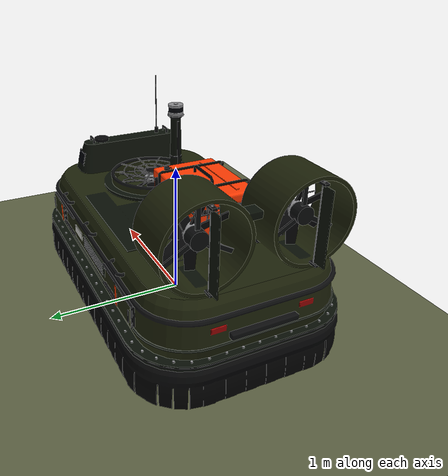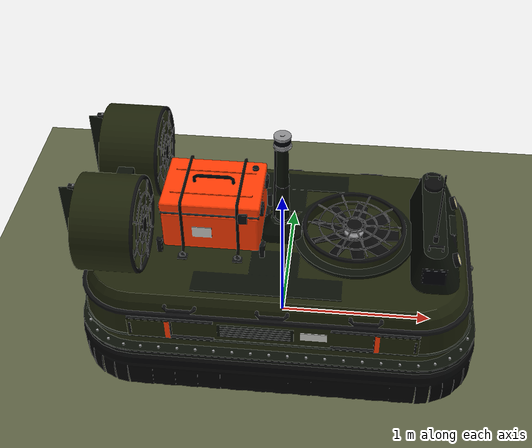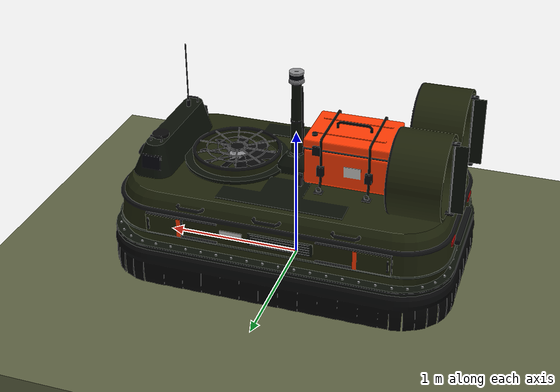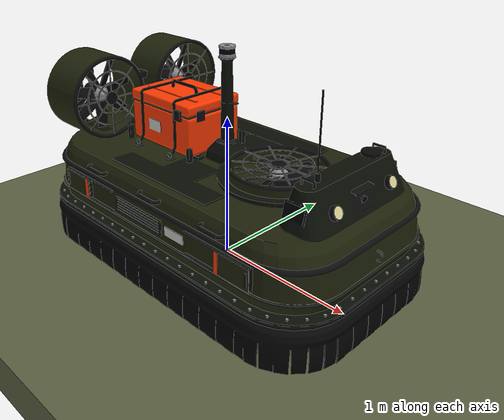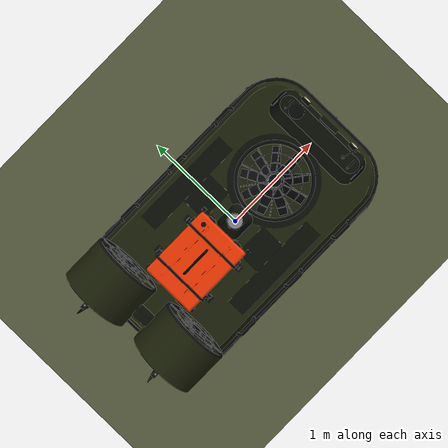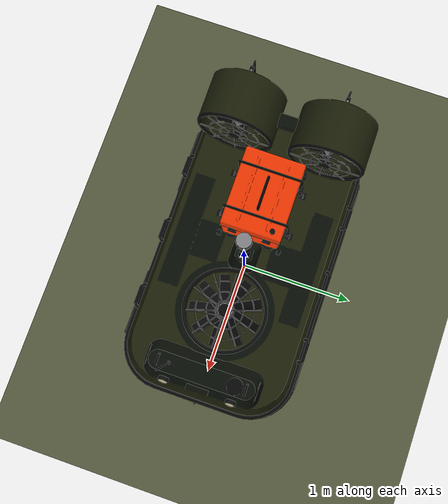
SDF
<?xml version="1.0"?>
<!-- GENERATED by hover_gazebo/scripts/gen_test_worlds_v2.py -->
<sdf version="1.9">
  <world name="v2_load_share_test">
    <physics name="1ms" type="dart">
      <max_step_size>0.001</max_step_size>
      <real_time_factor>1.0</real_time_factor>
      <dart><collision_detector>bullet</collision_detector></dart>
    </physics>
    <gravity>0 0 -9.81</gravity>
    <spherical_coordinates>
      <surface_model>EARTH_WGS84</surface_model>
      <latitude_deg>1.4466</latitude_deg><longitude_deg>103.7300</longitude_deg>
      <elevation>0</elevation><heading_deg>0</heading_deg>
    </spherical_coordinates>

    <plugin filename="gz-sim-physics-system" name="gz::sim::systems::Physics"/>
    <plugin filename="gz-sim-user-commands-system" name="gz::sim::systems::UserCommands"/>
    <plugin filename="gz-sim-scene-broadcaster-system" name="gz::sim::systems::SceneBroadcaster"/>
    <plugin filename="gz-sim-imu-system" name="gz::sim::systems::Imu"/>
    <plugin filename="gz-sim-navsat-system" name="gz::sim::systems::NavSat"/>
    <plugin filename="gz-sim-sensors-system" name="gz::sim::systems::Sensors">
      <render_engine>ogre2</render_engine>
    </plugin>
    <plugin filename="tidal_vehicle_plugins" name="hover::TerrainZones">
      <ground_height>0.0</ground_height>
    </plugin>
    <plugin filename="tidal_vehicle_plugins" name="hover::ScriptedCommands">
      <command><time>0.5</time><topic>/model/hovercraft_v2/lift_share</topic><type>gz.msgs.Double</type><data>data: 0.6</data></command>
      <command><time>0.6</time><topic>/model/hovercraft_v2/hover_enabled</topic><type>gz.msgs.Boolean</type><data>data: true</data></command>
      <command><time>6.0</time><topic>/model/hovercraft_v2/cmd_vel</topic><type>gz.msgs.Twist</type><data>linear { x: 1.0 } angular { z: 0.0 }</data></command>
      <command><time>6.2</time><topic>/model/hovercraft_v2/cmd_vel</topic><type>gz.msgs.Twist</type><data>linear { x: 1.0 } angular { z: 0.0 }</data></command>
      <command><time>6.4</time><topic>/model/hovercraft_v2/cmd_vel</topic><type>gz.msgs.Twist</type><data>linear { x: 1.0 } angular { z: 0.0 }</data></command>
      <command><time>6.6</time><topic>/model/hovercraft_v2/cmd_vel</topic><type>gz.msgs.Twist</type><data>linear { x: 1.0 } angular { z: 0.0 }</data></command>
      <command><time>6.8</time><topic>/model/hovercraft_v2/cmd_vel</topic><type>gz.msgs.Twist</type><data>linear { x: 1.0 } angular { z: 0.0 }</data></command>
      <command><time>7.0</time><topic>/model/hovercraft_v2/cmd_vel</topic><type>gz.msgs.Twist</type><data>linear { x: 1.0 } angular { z: 0.0 }</data></command>
      <command><time>7.2</time><topic>/model/hovercraft_v2/cmd_vel</topic><type>gz.msgs.Twist</type><data>linear { x: 1.0 } angular { z: 0.0 }</data></command>
      <command><time>7.4</time><topic>/model/hovercraft_v2/cmd_vel</topic><type>gz.msgs.Twist</type><data>linear { x: 1.0 } angular { z: 0.0 }</data></command>
      <command><time>7.6</time><topic>/model/hovercraft_v2/cmd_vel</topic><type>gz.msgs.Twist</type><data>linear { x: 1.0 } angular { z: 0.0 }</data></command>
      <command><time>7.8</time><topic>/model/hovercraft_v2/cmd_vel</topic><type>gz.msgs.Twist</type><data>linear { x: 1.0 } angular { z: 0.0 }</data></command>
      <command><time>8.0</time><topic>/model/hovercraft_v2/cmd_vel</topic><type>gz.msgs.Twist</type><data>linear { x: 1.0 } angular { z: 0.0 }</data></command>
      <command><time>8.2</time><topic>/model/hovercraft_v2/cmd_vel</topic><type>gz.msgs.Twist</type><data>linear { x: 1.0 } angular { z: 0.0 }</data></command>
      <command><time>8.4</time><topic>/model/hovercraft_v2/cmd_vel</topic><type>gz.msgs.Twist</type><data>linear { x: 1.0 } angular { z: 0.0 }</data></command>
      <command><time>8.6</time><topic>/model/hovercraft_v2/cmd_vel</topic><type>gz.msgs.Twist</type><data>linear { x: 1.0 } angular { z: 0.0 }</data></command>
      <command><time>8.8</time><topic>/model/hovercraft_v2/cmd_vel</topic><type>gz.msgs.Twist</type><data>linear { x: 1.0 } angular { z: 0.0 }</data></command>
      <command><time>9.0</time><topic>/model/hovercraft_v2/cmd_vel</topic><type>gz.msgs.Twist</type><data>linear { x: 1.0 } angular { z: 0.0 }</data></command>
      <command><time>9.2</time><topic>/model/hovercraft_v2/cmd_vel</topic><type>gz.msgs.Twist</type><data>linear { x: 1.0 } angular { z: 0.0 }</data></command>
      <command><time>9.4</time><topic>/model/hovercraft_v2/cmd_vel</topic><type>gz.msgs.Twist</type><data>linear { x: 1.0 } angular { z: 0.0 }</data></command>
      <command><time>9.6</time><topic>/model/hovercraft_v2/cmd_vel</topic><type>gz.msgs.Twist</type><data>linear { x: 1.0 } angular { z: 0.0 }</data></command>
      <command><time>9.8</time><topic>/model/hovercraft_v2/cmd_vel</topic><type>gz.msgs.Twist</type><data>linear { x: 1.0 } angular { z: 0.0 }</data></command>
      <command><time>10.0</time><topic>/model/hovercraft_v2/cmd_vel</topic><type>gz.msgs.Twist</type><data>linear { x: 1.0 } angular { z: 0.0 }</data></command>
      <command><time>10.2</time><topic>/model/hovercraft_v2/cmd_vel</topic><type>gz.msgs.Twist</type><data>linear { x: 1.0 } angular { z: 0.0 }</data></command>
      <command><time>10.4</time><topic>/model/hovercraft_v2/cmd_vel</topic><type>gz.msgs.Twist</type><data>linear { x: 1.0 } angular { z: 0.0 }</data></command>
      <command><time>10.6</time><topic>/model/hovercraft_v2/cmd_vel</topic><type>gz.msgs.Twist</type><data>linear { x: 1.0 } angular { z: 0.0 }</data></command>
      <command><time>10.8</time><topic>/model/hovercraft_v2/cmd_vel</topic><type>gz.msgs.Twist</type><data>linear { x: 1.0 } angular { z: 0.0 }</data></command>
      <command><time>11.0</time><topic>/model/hovercraft_v2/cmd_vel</topic><type>gz.msgs.Twist</type><data>linear { x: 1.0 } angular { z: 0.0 }</data></command>
      <command><time>11.2</time><topic>/model/hovercraft_v2/cmd_vel</topic><type>gz.msgs.Twist</type><data>linear { x: 1.0 } angular { z: 0.0 }</data></command>
      <command><time>11.4</time><topic>/model/hovercraft_v2/cmd_vel</topic><type>gz.msgs.Twist</type><data>linear { x: 1.0 } angular { z: 0.0 }</data></command>
      <command><time>11.6</time><topic>/model/hovercraft_v2/cmd_vel</topic><type>gz.msgs.Twist</type><data>linear { x: 1.0 } angular { z: 0.0 }</data></command>
      <command><time>11.8</time><topic>/model/hovercraft_v2/cmd_vel</topic><type>gz.msgs.Twist</type><data>linear { x: 1.0 } angular { z: 0.0 }</data></command>
      <command><time>12.0</time><topic>/model/hovercraft_v2/cmd_vel</topic><type>gz.msgs.Twist</type><data>linear { x: 1.0 } angular { z: 0.0 }</data></command>
      <command><time>12.2</time><topic>/model/hovercraft_v2/cmd_vel</topic><type>gz.msgs.Twist</type><data>linear { x: 1.0 } angular { z: 0.0 }</data></command>
      <command><time>12.4</time><topic>/model/hovercraft_v2/cmd_vel</topic><type>gz.msgs.Twist</type><data>linear { x: 1.0 } angular { z: 0.0 }</data></command>
      <command><time>12.6</time><topic>/model/hovercraft_v2/cmd_vel</topic><type>gz.msgs.Twist</type><data>linear { x: 1.0 } angular { z: 0.0 }</data></command>
      <command><time>12.8</time><topic>/model/hovercraft_v2/cmd_vel</topic><type>gz.msgs.Twist</type><data>linear { x: 1.0 } angular { z: 0.0 }</data></command>
      <command><time>13.0</time><topic>/model/hovercraft_v2/cmd_vel</topic><type>gz.msgs.Twist</type><data>linear { x: 1.0 } angular { z: 0.0 }</data></command>
      <command><time>13.2</time><topic>/model/hovercraft_v2/cmd_vel</topic><type>gz.msgs.Twist</type><data>linear { x: 1.0 } angular { z: 0.0 }</data></command>
      <command><time>13.4</time><topic>/model/hovercraft_v2/cmd_vel</topic><type>gz.msgs.Twist</type><data>linear { x: 1.0 } angular { z: 0.0 }</data></command>
      <command><time>13.6</time><topic>/model/hovercraft_v2/cmd_vel</topic><type>gz.msgs.Twist</type><data>linear { x: 1.0 } angular { z: 0.0 }</data></command>
      <command><time>13.8</time><topic>/model/hovercraft_v2/cmd_vel</topic><type>gz.msgs.Twist</type><data>linear { x: 1.0 } angular { z: 0.0 }</data></command>
      <command><time>14.0</time><topic>/model/hovercraft_v2/cmd_vel</topic><type>gz.msgs.Twist</type><data>linear { x: 0.0 } angular { z: 0.0 }</data></command>
      <command><time>14.2</time><topic>/model/hovercraft_v2/cmd_vel</topic><type>gz.msgs.Twist</type><data>linear { x: 0.0 } angular { z: 0.0 }</data></command>
      <command><time>14.4</time><topic>/model/hovercraft_v2/cmd_vel</topic><type>gz.msgs.Twist</type><data>linear { x: 0.0 } angular { z: 0.0 }</data></command>
      <command><time>14.6</time><topic>/model/hovercraft_v2/cmd_vel</topic><type>gz.msgs.Twist</type><data>linear { x: 0.0 } angular { z: 0.0 }</data></command>
      <command><time>14.8</time><topic>/model/hovercraft_v2/cmd_vel</topic><type>gz.msgs.Twist</type><data>linear { x: 0.0 } angular { z: 0.0 }</data></command>
      <command><time>15.0</time><topic>/model/hovercraft_v2/cmd_vel</topic><type>gz.msgs.Twist</type><data>linear { x: 0.0 } angular { z: 0.0 }</data></command>
      <command><time>15.2</time><topic>/model/hovercraft_v2/cmd_vel</topic><type>gz.msgs.Twist</type><data>linear { x: 0.0 } angular { z: 0.0 }</data></command>
      <command><time>15.4</time><topic>/model/hovercraft_v2/cmd_vel</topic><type>gz.msgs.Twist</type><data>linear { x: 0.0 } angular { z: 0.0 }</data></command>
      <command><time>15.6</time><topic>/model/hovercraft_v2/cmd_vel</topic><type>gz.msgs.Twist</type><data>linear { x: 0.0 } angular { z: 0.0 }</data></command>
      <command><time>15.8</time><topic>/model/hovercraft_v2/cmd_vel</topic><type>gz.msgs.Twist</type><data>linear { x: 0.0 } angular { z: 0.0 }</data></command>
      <command><time>16.0</time><topic>/model/hovercraft_v2/cmd_vel</topic><type>gz.msgs.Twist</type><data>linear { x: 0.0 } angular { z: 0.0 }</data></command>
      <command><time>16.2</time><topic>/model/hovercraft_v2/cmd_vel</topic><type>gz.msgs.Twist</type><data>linear { x: 0.0 } angular { z: 0.0 }</data></command>
      <command><time>16.4</time><topic>/model/hovercraft_v2/cmd_vel</topic><type>gz.msgs.Twist</type><data>linear { x: 0.0 } angular { z: 0.0 }</data></command>
      <command><time>16.6</time><topic>/model/hovercraft_v2/cmd_vel</topic><type>gz.msgs.Twist</type><data>linear { x: 0.0 } angular { z: 0.0 }</data></command>
      <command><time>16.8</time><topic>/model/hovercraft_v2/cmd_vel</topic><type>gz.msgs.Twist</type><data>linear { x: 0.0 } angular { z: 0.0 }</data></command>
      <command><time>17.0</time><topic>/model/hovercraft_v2/cmd_vel</topic><type>gz.msgs.Twist</type><data>linear { x: 0.0 } angular { z: 0.0 }</data></command>
      <command><time>17.2</time><topic>/model/hovercraft_v2/cmd_vel</topic><type>gz.msgs.Twist</type><data>linear { x: 0.0 } angular { z: 0.0 }</data></command>
      <command><time>17.4</time><topic>/model/hovercraft_v2/cmd_vel</topic><type>gz.msgs.Twist</type><data>linear { x: 0.0 } angular { z: 0.0 }</data></command>
      <command><time>17.6</time><topic>/model/hovercraft_v2/cmd_vel</topic><type>gz.msgs.Twist</type><data>linear { x: 0.0 } angular { z: 0.0 }</data></command>
      <command><time>17.8</time><topic>/model/hovercraft_v2/cmd_vel</topic><type>gz.msgs.Twist</type><data>linear { x: 0.0 } angular { z: 0.0 }</data></command>
    </plugin>

    <scene><ambient>0.5 0.5 0.5 1</ambient><background>0.7 0.8 0.9 1</background><grid>false</grid></scene>
    <light type="directional" name="sun">
      <cast_shadows>true</cast_shadows><pose>0 0 10 0 0 0</pose>
      <diffuse>0.9 0.9 0.85 1</diffuse><specular>0.2 0.2 0.2 1</specular>
      <direction>-0.4 0.3 -0.9</direction>
    </light>

    <model name="ground">
      <static>true</static>
      <pose>15.0 0.0 -0.15 0 0 0</pose>
      <link name="link">
        <collision name="c">
          <geometry><box><size>50 24 0.3</size></box></geometry>
          <surface><friction><ode><mu>1.0</mu><mu2>1.0</mu2></ode></friction></surface>
        </collision>
        <visual name="v">
          <geometry><box><size>50 24 0.3</size></box></geometry>
          <material><ambient>0.36 0.38 0.26 1</ambient><diffuse>0.36 0.38 0.26 1</diffuse>
            <specular>0.05 0.05 0.05 1</specular></material>
        </visual>
      </link>
    </model>
    <include>
      <uri>model://hovercraft_v2</uri>
      <name>hovercraft_v2</name>
      <pose>0 0 0.002 0 0 0.0</pose>
    </include>
  </world>
</sdf>

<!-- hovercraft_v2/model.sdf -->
<!-- GENERATED by tidal_vehicle_description/scripts/gen_description_v2.py from link_frames.json. Do not edit by hand. -->
<!-- Vehicle Version 2. Model frame: ground plane under hull centre; vehicle standing on its deployed tracks. -->
<!-- Total mass 300.00 kg; hull CoM offset 0.200418 0 -0.08; vehicle CoM height 0.457 m (TRACK mode). -->
<sdf version="1.9">
  <model name="hovercraft_v2">
    <self_collide>false</self_collide>

    <link name="base_link">
      <pose>0 0 0.5 0 0 0</pose>
      <inertial>
        <pose>0.200418 0 -0.08 0 0 0</pose>
        <mass>145.8</mass>
        <inertia><ixx>19.44</ixx><ixy>0</ixy><ixz>0</ixz>
                 <iyy>66.2175</iyy><iyz>0</iyz><izz>81.7695</izz></inertia>
      </inertial>
      <visual name="visual">
        <geometry><mesh><uri>model://hovercraft_v2/meshes/hull.dae</uri></mesh></geometry>
      </visual>
      <collision name="collision">
        <pose>0 0 0.01 0 0 0</pose>
        <geometry><box><size>2.3 1.2 0.4</size></box></geometry>
        <surface><friction><ode><mu>0.3</mu><mu2>0.3</mu2></ode></friction></surface>
      </collision>
      <sensor name="imu" type="imu"><pose>0 0 0 0 0 0</pose><gz_frame_id>imu_link</gz_frame_id>
        <always_on>1</always_on><update_rate>50</update_rate><topic>__default__</topic>
      </sensor>
      <sensor name="navsat" type="navsat"><pose>0.93 0.25 0.48 0 0 0</pose><gz_frame_id>base_link</gz_frame_id>
        <always_on>1</always_on><update_rate>10</update_rate>
      </sensor>
      <sensor name="ranger_fl" type="gpu_lidar"><pose>1 0.5 -0.2 0 1.5708 0</pose><gz_frame_id>base_link</gz_frame_id>
        <always_on>0</always_on><update_rate>10</update_rate>
        <!-- 5 rays over +/-3 deg (a narrow ToF beam). A single-sample gpu_lidar
             returns wrong ranges in gz-sensors 8, so don't use samples = 1. -->
        <lidar><scan><horizontal><samples>5</samples><resolution>1</resolution>
          <min_angle>-0.05</min_angle><max_angle>0.05</max_angle></horizontal></scan>
          <range><min>0.01</min><max>2.0</max><resolution>0.001</resolution></range></lidar>
      </sensor>
      <sensor name="ranger_fr" type="gpu_lidar"><pose>1 -0.5 -0.2 0 1.5708 0</pose><gz_frame_id>base_link</gz_frame_id>
        <always_on>0</always_on><update_rate>10</update_rate>
        <!-- 5 rays over +/-3 deg (a narrow ToF beam). A single-sample gpu_lidar
             returns wrong ranges in gz-sensors 8, so don't use samples = 1. -->
        <lidar><scan><horizontal><samples>5</samples><resolution>1</resolution>
          <min_angle>-0.05</min_angle><max_angle>0.05</max_angle></horizontal></scan>
          <range><min>0.01</min><max>2.0</max><resolution>0.001</resolution></range></lidar>
      </sensor>
      <sensor name="ranger_rl" type="gpu_lidar"><pose>-1 0.5 -0.2 0 1.5708 0</pose><gz_frame_id>base_link</gz_frame_id>
        <always_on>0</always_on><update_rate>10</update_rate>
        <!-- 5 rays over +/-3 deg (a narrow ToF beam). A single-sample gpu_lidar
             returns wrong ranges in gz-sensors 8, so don't use samples = 1. -->
        <lidar><scan><horizontal><samples>5</samples><resolution>1</resolution>
          <min_angle>-0.05</min_angle><max_angle>0.05</max_angle></horizontal></scan>
          <range><min>0.01</min><max>2.0</max><resolution>0.001</resolution></range></lidar>
      </sensor>
      <sensor name="ranger_rr" type="gpu_lidar"><pose>-1 -0.5 -0.2 0 1.5708 0</pose><gz_frame_id>base_link</gz_frame_id>
        <always_on>0</always_on><update_rate>10</update_rate>
        <!-- 5 rays over +/-3 deg (a narrow ToF beam). A single-sample gpu_lidar
             returns wrong ranges in gz-sensors 8, so don't use samples = 1. -->
        <lidar><scan><horizontal><samples>5</samples><resolution>1</resolution>
          <min_angle>-0.05</min_angle><max_angle>0.05</max_angle></horizontal></scan>
          <range><min>0.01</min><max>2.0</max><resolution>0.001</resolution></range></lidar>
      </sensor>
    </link>
    <link name="skirt">
      <pose>0 0 0.23 0 0 0</pose>
      <inertial>
        <pose>0 0 -0.03 0 0 0</pose>
        <mass>18.0</mass>
        <inertia><ixx>3.4614</ixx><ixy>0</ixy><ixz>0</ixz>
                 <iyy>9.4614</iyy><iyz>0</iyz><izz>12.75</izz></inertia>
      </inertial>
      <visual name="visual">
        <geometry><mesh><uri>model://hovercraft_v2/meshes/skirt.dae</uri></mesh></geometry>
      </visual>
      <collision name="collision">
        <pose>0 0 -0.03 0 0 0</pose>
        <geometry><box><size>2.5 1.5 0.24</size></box></geometry>
        <surface><friction><ode><mu>0.2</mu><mu2>0.2</mu2></ode></friction></surface>
      </collision>
    </link>
    <link name="lift_fan">
      <pose>0.45 0 0.74 0 0 0</pose>
      <inertial>
        <pose>0 0 0 0 0 0</pose>
        <mass>12.0</mass>
        <inertia><ixx>0.2368</ixx><ixy>0</ixy><ixz>0</ixz>
                 <iyy>0.2368</iyy><iyz>0</iyz><izz>0.4704</izz></inertia>
      </inertial>
      <visual name="visual">
        <geometry><mesh><uri>model://hovercraft_v2/meshes/lift_fan.dae</uri></mesh></geometry>
      </visual>
    </link>
    <link name="thrust_fan_left">
      <pose>-0.93 0.35 1.03 0 0 0</pose>
      <inertial>
        <pose>0 0 0 0 0 0</pose>
        <mass>10.0</mass>
        <inertia><ixx>0.3125</ixx><ixy>0</ixy><ixz>0</ixz>
                 <iyy>0.157583</iyy><iyz>0</iyz><izz>0.157583</izz></inertia>
      </inertial>
      <visual name="visual">
        <geometry><mesh><uri>model://hovercraft_v2/meshes/thrust_fan_left.dae</uri></mesh></geometry>
      </visual>
    </link>
    <link name="thrust_fan_right">
      <pose>-0.93 -0.35 1.03 0 0 0</pose>
      <inertial>
        <pose>0 0 0 0 0 0</pose>
        <mass>10.0</mass>
        <inertia><ixx>0.3125</ixx><ixy>0</ixy><ixz>0</ixz>
                 <iyy>0.157583</iyy><iyz>0</iyz><izz>0.157583</izz></inertia>
      </inertial>
      <visual name="visual">
        <geometry><mesh><uri>model://hovercraft_v2/meshes/thrust_fan_right.dae</uri></mesh></geometry>
      </visual>
    </link>
    <link name="rudder_left">
      <pose>-1.17 0.35 1.03 0 0 0</pose>
      <inertial>
        <pose>-0.038 0 0 0 0 0</pose>
        <mass>1.5</mass>
        <inertia><ixx>0.031268</ixx><ixy>0</ixy><ixz>0</ixz>
                 <iyy>0.0325</iyy><iyz>0</iyz><izz>0.001268</izz></inertia>
      </inertial>
      <visual name="visual">
        <geometry><mesh><uri>model://hovercraft_v2/meshes/rudder_left.dae</uri></mesh></geometry>
      </visual>
    </link>
    <link name="rudder_right">
      <pose>-1.17 -0.35 1.03 0 0 0</pose>
      <inertial>
        <pose>-0.038 0 0 0 0 0</pose>
        <mass>1.5</mass>
        <inertia><ixx>0.031268</ixx><ixy>0</ixy><ixz>0</ixz>
                 <iyy>0.0325</iyy><iyz>0</iyz><izz>0.001268</izz></inertia>
      </inertial>
      <visual name="visual">
        <geometry><mesh><uri>model://hovercraft_v2/meshes/rudder_right.dae</uri></mesh></geometry>
      </visual>
    </link>
    <link name="track_left">
      <pose>0 0.42 0.14 0 0 0</pose>
      <inertial>
        <pose>0 0 0 0 0 0</pose>
        <mass>34.0</mass>
        <inertia><ixx>0.444267</ixx><ixy>0</ixy><ixz>0</ixz>
                 <iyy>5.77547</iyy><iyz>0</iyz><izz>5.77547</izz></inertia>
      </inertial>
      <visual name="visual">
        <geometry><mesh><uri>model://hovercraft_v2/meshes/track_left.dae</uri></mesh></geometry>
      </visual>
      <collision name="collision">
        <pose>0 0 0 0 0 0</pose>
        <geometry><box><size>1.4 0.28 0.28</size></box></geometry>
        <surface><friction><ode><mu>1.0</mu><mu2>1.0</mu2></ode></friction></surface>
      </collision>
      <collision name="collision_1">
        <pose>0.7 0 0 1.5708 0 0</pose>
        <geometry><cylinder><radius>0.14</radius><length>0.28</length></cylinder></geometry>
        <surface><friction><ode><mu>1.0</mu><mu2>1.0</mu2></ode></friction></surface>
      </collision>
      <collision name="collision_2">
        <pose>-0.7 0 0 1.5708 0 0</pose>
        <geometry><cylinder><radius>0.14</radius><length>0.28</length></cylinder></geometry>
        <surface><friction><ode><mu>1.0</mu><mu2>1.0</mu2></ode></friction></surface>
      </collision>
    </link>
    <link name="track_right">
      <pose>0 -0.42 0.14 0 0 0</pose>
      <inertial>
        <pose>0 0 0 0 0 0</pose>
        <mass>34.0</mass>
        <inertia><ixx>0.444267</ixx><ixy>0</ixy><ixz>0</ixz>
                 <iyy>5.77547</iyy><iyz>0</iyz><izz>5.77547</izz></inertia>
      </inertial>
      <visual name="visual">
        <geometry><mesh><uri>model://hovercraft_v2/meshes/track_right.dae</uri></mesh></geometry>
      </visual>
      <collision name="collision">
        <pose>0 0 0 0 0 0</pose>
        <geometry><box><size>1.4 0.28 0.28</size></box></geometry>
        <surface><friction><ode><mu>1.0</mu><mu2>1.0</mu2></ode></friction></surface>
      </collision>
      <collision name="collision_1">
        <pose>0.7 0 0 1.5708 0 0</pose>
        <geometry><cylinder><radius>0.14</radius><length>0.28</length></cylinder></geometry>
        <surface><friction><ode><mu>1.0</mu><mu2>1.0</mu2></ode></friction></surface>
      </collision>
      <collision name="collision_2">
        <pose>-0.7 0 0 1.5708 0 0</pose>
        <geometry><cylinder><radius>0.14</radius><length>0.28</length></cylinder></geometry>
        <surface><friction><ode><mu>1.0</mu><mu2>1.0</mu2></ode></friction></surface>
      </collision>
    </link>
    <link name="puff_bow_left">
      <pose>0.74 0.7 0.51 0 0 0</pose>
      <inertial>
        <pose>0 0 0 0 0 0</pose>
        <mass>0.5</mass>
        <inertia><ixx>0.000818167</ixx><ixy>0</ixy><ixz>0</ixz>
                 <iyy>0.00363333</iyy><iyz>0</iyz><izz>0.00281817</izz></inertia>
      </inertial>
      <visual name="visual">
        <geometry><mesh><uri>model://hovercraft_v2/meshes/puff_bow_left.dae</uri></mesh></geometry>
      </visual>
    </link>
    <link name="puff_bow_right">
      <pose>0.74 -0.7 0.51 0 0 0</pose>
      <inertial>
        <pose>0 0 0 0 0 0</pose>
        <mass>0.5</mass>
        <inertia><ixx>0.000818167</ixx><ixy>0</ixy><ixz>0</ixz>
                 <iyy>0.00363333</iyy><iyz>0</iyz><izz>0.00281817</izz></inertia>
      </inertial>
      <visual name="visual">
        <geometry><mesh><uri>model://hovercraft_v2/meshes/puff_bow_right.dae</uri></mesh></geometry>
      </visual>
    </link>
    <link name="puff_stern_left">
      <pose>-0.74 0.7 0.51 0 0 0</pose>
      <inertial>
        <pose>0 0 0 0 0 0</pose>
        <mass>0.5</mass>
        <inertia><ixx>0.000818167</ixx><ixy>0</ixy><ixz>0</ixz>
                 <iyy>0.00363333</iyy><iyz>0</iyz><izz>0.00281817</izz></inertia>
      </inertial>
      <visual name="visual">
        <geometry><mesh><uri>model://hovercraft_v2/meshes/puff_stern_left.dae</uri></mesh></geometry>
      </visual>
    </link>
    <link name="puff_stern_right">
      <pose>-0.74 -0.7 0.51 0 0 0</pose>
      <inertial>
        <pose>0 0 0 0 0 0</pose>
        <mass>0.5</mass>
        <inertia><ixx>0.000818167</ixx><ixy>0</ixy><ixz>0</ixz>
                 <iyy>0.00363333</iyy><iyz>0</iyz><izz>0.00281817</izz></inertia>
      </inertial>
      <visual name="visual">
        <geometry><mesh><uri>model://hovercraft_v2/meshes/puff_stern_right.dae</uri></mesh></geometry>
      </visual>
    </link>
    <link name="payload_box">
      <pose>-0.42 0 0.74 0 0 0</pose>
      <inertial>
        <pose>0 0 0.175 0 0 0</pose>
        <mass>30.0</mass>
        <inertia><ixx>0.8125</ixx><ixy>0</ixy><ixz>0</ixz>
                 <iyy>1.20625</iyy><iyz>0</iyz><izz>1.40625</izz></inertia>
      </inertial>
      <visual name="visual">
        <geometry><mesh><uri>model://hovercraft_v2/meshes/payload_box.dae</uri></mesh></geometry>
      </visual>
      <collision name="collision">
        <pose>0 0 0.175 0 0 0</pose>
        <geometry><box><size>0.6 0.45 0.35</size></box></geometry>
        <surface><friction><ode><mu>0.5</mu><mu2>0.5</mu2></ode></friction></surface>
      </collision>
    </link>
    <link name="lidar_link">
      <pose>0 0 1.44 0 0 0</pose>
      <inertial>
        <pose>0 0 0 0 0 0</pose>
        <mass>1.0</mass>
        <inertia><ixx>0.00109147</ixx><ixy>0</ixy><ixz>0</ixz>
                 <iyy>0.00109147</iyy><iyz>0</iyz><izz>0.00132612</izz></inertia>
      </inertial>
      <visual name="visual">
        <geometry><mesh><uri>model://hovercraft_v2/meshes/lidar.dae</uri></mesh></geometry>
      </visual>
      <collision name="collision">
        <pose>0 0 0 0 0 0</pose>
        <geometry><cylinder><radius>0.0515</radius><length>0.0717</length></cylinder></geometry>
        <surface><friction><ode><mu>0.5</mu><mu2>0.5</mu2></ode></friction></surface>
      </collision>
      <sensor name="lidar_3d" type="gpu_lidar"><pose>0 0 0 0 0 0</pose><gz_frame_id>lidar_link</gz_frame_id>
        <always_on>1</always_on><update_rate>5</update_rate><visualize>0</visualize>
        <lidar>
          <scan>
            <horizontal><samples>360</samples><resolution>1</resolution>
              <min_angle>-3.14159</min_angle><max_angle>3.14159</max_angle></horizontal>
            <vertical><samples>8</samples><resolution>1</resolution>
              <min_angle>-0.26180</min_angle>
              <max_angle>0.26180</max_angle></vertical>
          </scan>
          <range><min>0.3</min><max>30.0</max><resolution>0.01</resolution></range>
          <noise><type>gaussian</type><mean>0</mean><stddev>0.01</stddev></noise>
        </lidar>
      </sensor>
    </link>
    <link name="camera_link">
      <pose>1.07 0 0.8 0 0 0</pose>
      <inertial>
        <pose>-0.055 0 0 0 0 0</pose>
        <mass>0.2</mass>
        <inertia><ixx>0.000295417</ixx><ixy>0</ixy><ixz>0</ixz>
                 <iyy>0.0001875</iyy><iyz>0</iyz><izz>0.000295417</izz></inertia>
      </inertial>
      <visual name="visual">
        <geometry><mesh><uri>model://hovercraft_v2/meshes/camera.dae</uri></mesh></geometry>
      </visual>
      <collision name="collision">
        <pose>-0.055 0 0 0 0 0</pose>
        <geometry><box><size>0.075 0.11 0.075</size></box></geometry>
        <surface><friction><ode><mu>0.5</mu><mu2>0.5</mu2></ode></friction></surface>
      </collision>
      <!-- Operator-camera profile: sufficient for scene awareness while
           avoiding a high-resolution render every simulation tick. -->
      <sensor name="front_camera" type="camera"><pose>0 0 0 0 0 0</pose><gz_frame_id>camera_link</gz_frame_id>
        <always_on>1</always_on><update_rate>5</update_rate>
        <camera><horizontal_fov>1.40</horizontal_fov>
          <image><width>320</width><height>240</height><format>R8G8B8</format></image>
          <clip><near>0.05</near><far>60</far></clip></camera>
      </sensor>
    </link>

    <joint name="skirt_joint" type="fixed">
      <parent>base_link</parent>
      <child>skirt</child>
    </joint>
    <joint name="lift_fan_joint" type="revolute">
      <parent>base_link</parent>
      <child>lift_fan</child>
      <axis>
        <xyz>0 0 1</xyz>
        <limit><lower>-1e16</lower><upper>1e16</upper><effort>20</effort></limit>
        <dynamics><damping>0.01</damping></dynamics>
      </axis>
    </joint>
    <joint name="thrust_fan_left_joint" type="revolute">
      <parent>base_link</parent>
      <child>thrust_fan_left</child>
      <axis>
        <xyz>1 0 0</xyz>
        <limit><lower>-1e16</lower><upper>1e16</upper><effort>20</effort></limit>
        <dynamics><damping>0.01</damping></dynamics>
      </axis>
    </joint>
    <joint name="thrust_fan_right_joint" type="revolute">
      <parent>base_link</parent>
      <child>thrust_fan_right</child>
      <axis>
        <xyz>1 0 0</xyz>
        <limit><lower>-1e16</lower><upper>1e16</upper><effort>20</effort></limit>
        <dynamics><damping>0.01</damping></dynamics>
      </axis>
    </joint>
    <joint name="rudder_left_joint" type="revolute">
      <parent>base_link</parent>
      <child>rudder_left</child>
      <axis>
        <xyz>0 0 1</xyz>
        <limit><lower>-0.5236</lower><upper>0.5236</upper><effort>20</effort></limit>
        <dynamics><damping>0.5</damping></dynamics>
      </axis>
    </joint>
    <joint name="rudder_right_joint" type="revolute">
      <parent>base_link</parent>
      <child>rudder_right</child>
      <axis>
        <xyz>0 0 1</xyz>
        <limit><lower>-0.5236</lower><upper>0.5236</upper><effort>20</effort></limit>
        <dynamics><damping>0.5</damping></dynamics>
      </axis>
    </joint>
    <joint name="track_left_joint" type="prismatic">
      <parent>base_link</parent>
      <child>track_left</child>
      <axis>
        <xyz>0 0 1</xyz>
        <limit><lower>-0.02</lower><upper>0.27</upper><effort>6000.0</effort></limit>
        <dynamics><damping>200.0</damping></dynamics>
      </axis>
    </joint>
    <joint name="track_right_joint" type="prismatic">
      <parent>base_link</parent>
      <child>track_right</child>
      <axis>
        <xyz>0 0 1</xyz>
        <limit><lower>-0.02</lower><upper>0.27</upper><effort>6000.0</effort></limit>
        <dynamics><damping>200.0</damping></dynamics>
      </axis>
    </joint>
    <joint name="puff_bow_left_joint" type="prismatic">
      <parent>base_link</parent>
      <child>puff_bow_left</child>
      <axis>
        <xyz>-1 0 0</xyz>
        <limit><lower>-0.02</lower><upper>0.28</upper><effort>20</effort></limit>
        <dynamics><damping>1.0</damping></dynamics>
      </axis>
    </joint>
    <joint name="puff_bow_right_joint" type="prismatic">
      <parent>base_link</parent>
      <child>puff_bow_right</child>
      <axis>
        <xyz>-1 0 0</xyz>
        <limit><lower>-0.02</lower><upper>0.28</upper><effort>20</effort></limit>
        <dynamics><damping>1.0</damping></dynamics>
      </axis>
    </joint>
    <joint name="puff_stern_left_joint" type="prismatic">
      <parent>base_link</parent>
      <child>puff_stern_left</child>
      <axis>
        <xyz>1 0 0</xyz>
        <limit><lower>-0.02</lower><upper>0.28</upper><effort>20</effort></limit>
        <dynamics><damping>1.0</damping></dynamics>
      </axis>
    </joint>
    <joint name="puff_stern_right_joint" type="prismatic">
      <parent>base_link</parent>
      <child>puff_stern_right</child>
      <axis>
        <xyz>1 0 0</xyz>
        <limit><lower>-0.02</lower><upper>0.28</upper><effort>20</effort></limit>
        <dynamics><damping>1.0</damping></dynamics>
      </axis>
    </joint>
    <joint name="payload_box_joint" type="fixed">
      <parent>base_link</parent>
      <child>payload_box</child>
    </joint>
    <joint name="lidar_joint" type="fixed">
      <parent>base_link</parent>
      <child>lidar_link</child>
    </joint>
    <joint name="camera_joint" type="fixed">
      <parent>base_link</parent>
      <child>camera_link</child>
    </joint>

    <plugin filename="tidal_vehicle_plugins" name="hover::AirCushion">
      <link_name>base_link</link_name>
      <corner>0.935 0.480 -0.470</corner><corner>0.935 -0.480 -0.470</corner><corner>-0.935 0.480 -0.470</corner><corner>-0.935 -0.480 -0.470</corner>
      <target_gap>0.05</target_gap>
      <stiffness>18000</stiffness>
      <damping>800</damping>
      <max_force_factor>2.0</max_force_factor>
      <spinup_time>2.0</spinup_time>
      <glide_linear_drag>50</glide_linear_drag>
      <glide_quadratic_drag>25</glide_quadratic_drag>
      <glide_yaw_drag>200</glide_yaw_drag>
      <glide_lateral_factor>3</glide_lateral_factor>
      <max_thrust>200</max_thrust>
      <thrust_time_constant>0.4</thrust_time_constant>
      <!-- reversible ducted fans (AGENTS.md): 80 % reverse thrust, so the vehicle
           can brake and hold station on the corridor's ~5 deg shore incline -->
      <reverse_thrust_fraction>0.8</reverse_thrust_fraction>
      <yaw_reserve_fraction>0.3</yaw_reserve_fraction>
      <thrust_point_left>-0.93 0.35 0.53</thrust_point_left>
      <thrust_point_right>-0.93 -0.35 0.53</thrust_point_right>
      <rudder_point>-1.17 0 0.53</rudder_point>
      <mud_viscous_drag>1800</mud_viscous_drag>
      <mud_rolling_resistance>0.25</mud_rolling_resistance>
      <mud_yaw_drag>1000</mud_yaw_drag>
      <water_hull_drag>720</water_hull_drag>
      <water_yaw_drag>500</water_yaw_drag>
      <vent_length>0.06</vent_length>
      <rudder_wash_coeff>0.55</rudder_wash_coeff>
      <rudder_control>true</rudder_control>
      <rudder_max_angle>0.4363</rudder_max_angle>
      <rudder_min_thrust>60</rudder_min_thrust>
      <rudder_rate>1.5</rudder_rate>
      <!-- puff ports: bow/stern side vents of cushion air, 2*Cd*p*A each -->
      <puff_port_force>37.5</puff_port_force>
      <puff_port_point>0.74 0.6974 0.01</puff_port_point>
      <puff_port_time_constant>0.15</puff_port_time_constant>
      <puff_lateral_gain>150</puff_lateral_gain>
      <puff_shutter_travel>0.26</puff_shutter_travel>
      <heading_kp>600</heading_kp><heading_kd>400</heading_kd>
      <speed_kp>480</speed_kp><speed_ki>120</speed_ki><yaw_rate_kp>400</yaw_rate_kp>
      <cmd_timeout>0.5</cmd_timeout>
      <use_raycast>true</use_raycast>
      <log_file>/tmp/hover_{model}.csv</log_file>
      <log_joint>track_left_joint</log_joint><log_joint>track_right_joint</log_joint>
      <log_joint>rudder_left_joint</log_joint><log_joint>puff_bow_right_joint</log_joint>
    </plugin>

    <plugin filename="gz-sim-track-controller-system" name="gz::sim::systems::TrackController">
      <link>track_left</link>
      <min_velocity>-1.92</min_velocity>
      <max_velocity>1.92</max_velocity>
    </plugin>
    <plugin filename="gz-sim-track-controller-system" name="gz::sim::systems::TrackController">
      <link>track_right</link>
      <min_velocity>-1.92</min_velocity>
      <max_velocity>1.92</max_velocity>
    </plugin>
    <plugin filename="gz-sim-tracked-vehicle-system" name="gz::sim::systems::TrackedVehicle">
      <left_track><link>track_left</link></left_track>
      <right_track><link>track_right</link></right_track>
      <tracks_separation>0.840</tracks_separation>
      <tracks_height>0.280</tracks_height>
      <steering_efficiency>0.5</steering_efficiency>
      <linear_velocity><min_velocity>-1.5</min_velocity><max_velocity>1.5</max_velocity>
        <min_acceleration>-1.5</min_acceleration><max_acceleration>1.0</max_acceleration></linear_velocity>
      <angular_velocity><min_velocity>-1.0</min_velocity><max_velocity>1.0</max_velocity>
        <min_acceleration>-2.0</min_acceleration><max_acceleration>2.0</max_acceleration></angular_velocity>
      <odom_topic>internal/track_odometry</odom_topic><tf_topic>internal/track_tf</tf_topic>
      <odom_publish_frequency>20</odom_publish_frequency>
    </plugin>

    <plugin filename="gz-sim-joint-position-controller-system" name="gz::sim::systems::JointPositionController">
      <joint_name>track_left_joint</joint_name>
      <sub_topic>tracks_cmd</sub_topic>
      <use_velocity_commands>true</use_velocity_commands>
      <p_gain>4.0</p_gain><i_gain>0</i_gain><d_gain>0</d_gain>
      <cmd_max>0.2</cmd_max><cmd_min>-0.2</cmd_min>
      <initial_position>0</initial_position>
    </plugin>
    <plugin filename="gz-sim-joint-position-controller-system" name="gz::sim::systems::JointPositionController">
      <joint_name>track_right_joint</joint_name>
      <sub_topic>tracks_cmd</sub_topic>
      <use_velocity_commands>true</use_velocity_commands>
      <p_gain>4.0</p_gain><i_gain>0</i_gain><d_gain>0</d_gain>
      <cmd_max>0.2</cmd_max><cmd_min>-0.2</cmd_min>
      <initial_position>0</initial_position>
    </plugin>
    <plugin filename="gz-sim-joint-position-controller-system" name="gz::sim::systems::JointPositionController">
      <joint_name>rudder_left_joint</joint_name><sub_topic>rudder_left_cmd</sub_topic>
      <p_gain>20</p_gain><d_gain>0.5</d_gain>
      <cmd_max>20</cmd_max><cmd_min>-20</cmd_min>
    </plugin>
    <plugin filename="gz-sim-joint-position-controller-system" name="gz::sim::systems::JointPositionController">
      <joint_name>rudder_right_joint</joint_name><sub_topic>rudder_right_cmd</sub_topic>
      <p_gain>20</p_gain><d_gain>0.5</d_gain>
      <cmd_max>20</cmd_max><cmd_min>-20</cmd_min>
    </plugin>
    <plugin filename="gz-sim-joint-position-controller-system" name="gz::sim::systems::JointPositionController">
      <joint_name>puff_bow_left_joint</joint_name><sub_topic>puff_bow_left_cmd</sub_topic>
      <use_velocity_commands>true</use_velocity_commands>
      <p_gain>10.0</p_gain><i_gain>0</i_gain><d_gain>0</d_gain>
      <cmd_max>1.0</cmd_max><cmd_min>-1.0</cmd_min>
      <initial_position>0</initial_position>
    </plugin>
    <plugin filename="gz-sim-joint-position-controller-system" name="gz::sim::systems::JointPositionController">
      <joint_name>puff_bow_right_joint</joint_name><sub_topic>puff_bow_right_cmd</sub_topic>
      <use_velocity_commands>true</use_velocity_commands>
      <p_gain>10.0</p_gain><i_gain>0</i_gain><d_gain>0</d_gain>
      <cmd_max>1.0</cmd_max><cmd_min>-1.0</cmd_min>
      <initial_position>0</initial_position>
    </plugin>
    <plugin filename="gz-sim-joint-position-controller-system" name="gz::sim::systems::JointPositionController">
      <joint_name>puff_stern_left_joint</joint_name><sub_topic>puff_stern_left_cmd</sub_topic>
      <use_velocity_commands>true</use_velocity_commands>
      <p_gain>10.0</p_gain><i_gain>0</i_gain><d_gain>0</d_gain>
      <cmd_max>1.0</cmd_max><cmd_min>-1.0</cmd_min>
      <initial_position>0</initial_position>
    </plugin>
    <plugin filename="gz-sim-joint-position-controller-system" name="gz::sim::systems::JointPositionController">
      <joint_name>puff_stern_right_joint</joint_name><sub_topic>puff_stern_right_cmd</sub_topic>
      <use_velocity_commands>true</use_velocity_commands>
      <p_gain>10.0</p_gain><i_gain>0</i_gain><d_gain>0</d_gain>
      <cmd_max>1.0</cmd_max><cmd_min>-1.0</cmd_min>
      <initial_position>0</initial_position>
    </plugin>
    <plugin filename="gz-sim-joint-state-publisher-system" name="gz::sim::systems::JointStatePublisher"/>

    <!-- /odom + TF (map -> base_link). Ground-truth pose, valid in every mode.
         Idealised: stated in docs. -->
    <plugin filename="gz-sim-odometry-publisher-system" name="gz::sim::systems::OdometryPublisher">
      <odom_frame>map</odom_frame>
      <robot_base_frame>base_link</robot_base_frame>
      <dimensions>3</dimensions>
      <odom_publish_frequency>50</odom_publish_frequency>
    </plugin>
  </model>
</sdf>
